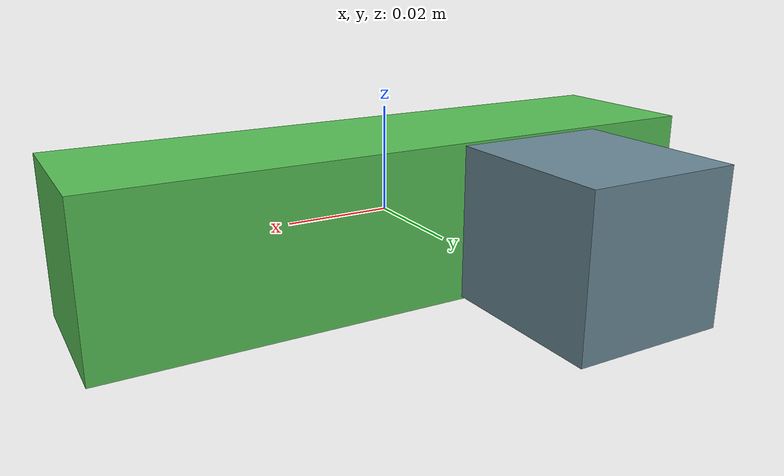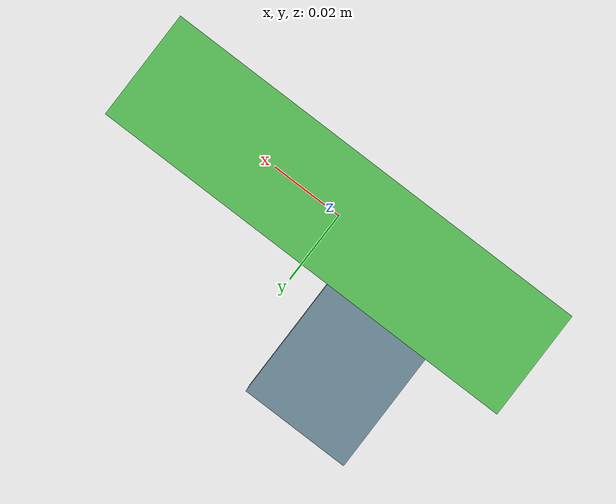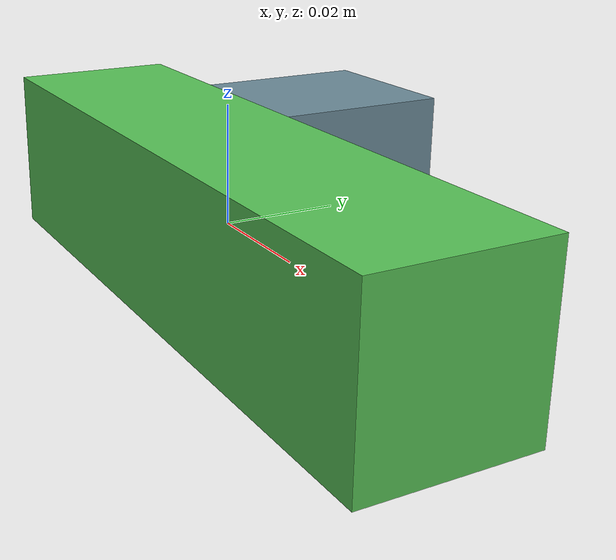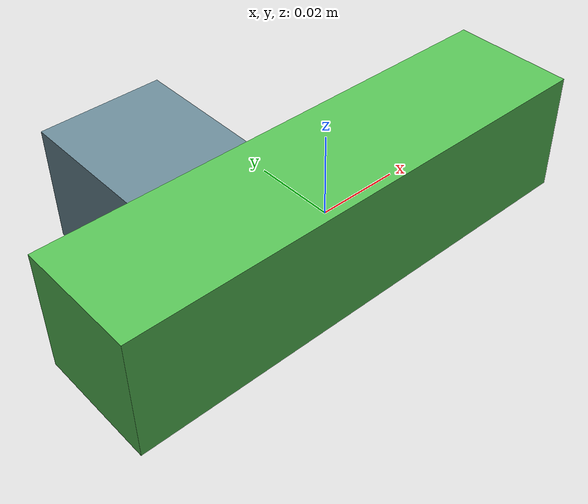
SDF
<sdf version="1.4"><world name="default"><model name="object0"><link name="link1"><pose>0 0 0 0 0 0</pose><inertial><pose>0 0 0 0 0 0</pose><mass>0.06479491509133693</mass><inertia><ixx>9.71923726370054e-06</ixx><ixy>0</ixy><iyy>8.260131439708655e-05</iyy><ixz>0</ixz><iyz>0</iyz><izz>8.260131439708655e-05</izz></inertia></inertial><visual name="link1_visual"><pose>0 0  0 0 0 0</pose><geometry><box><size>0.11999058350247581 0.03 0.03</size></box></geometry><material><diffuse>0.3381032229173469 0.7533447873851796 0.3358737930221126 1</diffuse></material></visual><collision><pose>0 0  0 0 0 0</pose><geometry><box><size>0.11999058350247581 0.03 0.03</size></box></geometry></collision></link><link name="link2"><pose>-0.02308775186130588 0.01865872138399543 0 0 0 0</pose><inertial><pose>0 0 0 0 0 0</pose><mass>0.03132560990324522</mass><inertia><ixx>1.09801619344538e-05</ixx><ixy>0</ixy><iyy>4.544823903462493e-06</iyy><ixz>0</ixz><iyz>0</iyz><izz>1.1134179516478089e-05</izz></inertia></inertial><visual name="link2_visual"><pose>0 0  0 0 0 0</pose><geometry><box><size>0.03 0.05801038870971337 0.028999999999999998</size></box></geometry><material><diffuse>0.41487385500932 0.5358928761722918 0.5906700389703579 1</diffuse></material></visual><collision><pose>0 0  0 0 0 0</pose><geometry><box><size>0.03 0.05801038870971337 0.028999999999999998</size></box></geometry></collision></link><joint name="link_joint_0" type="fixed"><parent>link1</parent><child>link2</child><pose>0 0 0 0 0 0</pose><axis><xyz>0 0 1</xyz></axis></joint></model></world></sdf>
